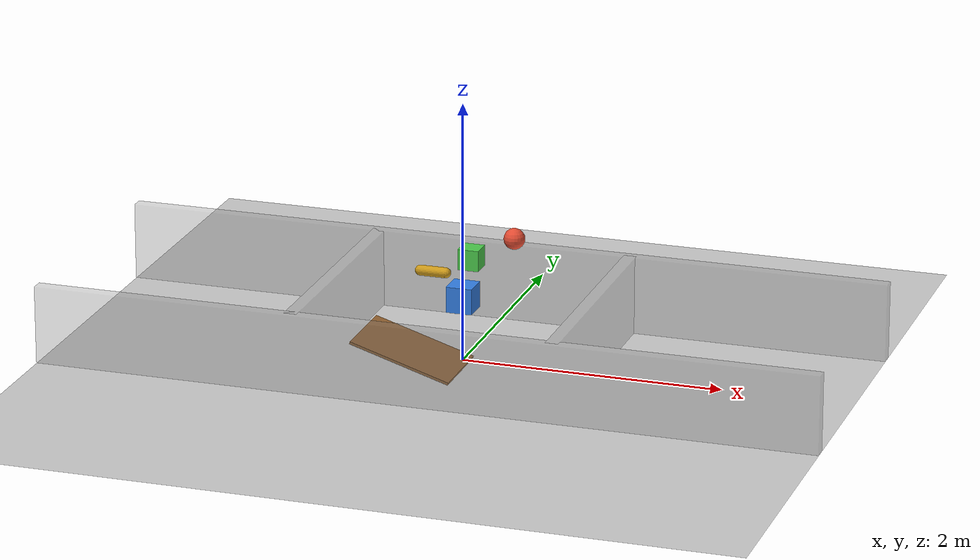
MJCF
<mujoco model="contact_demo">
  <compiler angle="radian"/>

  <option gravity="0 0 -9.81" timestep="0.002">
    <!-- Contact solver parameters -->
    <flag warmstart="enable"/>
  </option>

  <default>
    <geom contype="1" conaffinity="1" friction="0.8 0.005 0.001"
          solref="0.02 1" solimp="0.9 0.95 0.001"/>
  </default>

  <asset>
    <!-- Materials define visual appearance -->
    <material name="floor_mat" rgba="0.8 0.8 0.8 1" reflectance="0.3"/>
    <material name="box_mat" rgba="0.2 0.5 0.9 1"/>
    <material name="ball_mat" rgba="0.9 0.3 0.2 1"/>
    <material name="wall_mat" rgba="0.5 0.5 0.5 0.3"/>
  </asset>

  <visual>
    <headlight ambient="0.3 0.3 0.3"/>
    <rgba haze="0.15 0.25 0.35 1"/>
  </visual>

  <worldbody>
    <light pos="0 -2 3" dir="0 0.4 -1" diffuse="1 1 1" castshadow="true"/>
    <light pos="2 2 3" dir="-0.3 -0.3 -1" diffuse="0.5 0.5 0.5"/>

    <!-- Ground plane -->
    <geom type="plane" size="3 3 0.1" material="floor_mat"/>

    <!-- Walls (for containment) -->
    <geom type="box" size="3 0.05 0.3" pos="0 -1 0.3" material="wall_mat"/>
    <geom type="box" size="3 0.05 0.3" pos="0 1 0.3" material="wall_mat"/>
    <geom type="box" size="0.05 1 0.3" pos="-1 0 0.3" material="wall_mat"/>
    <geom type="box" size="0.05 1 0.3" pos="1 0 0.3" material="wall_mat"/>

    <!-- Box 1: free-floating body (6 DOF) -->
    <body name="box1" pos="0 0 0.5">
      <!-- Free joint: gives body full 6 DOF (3 translation + 3 rotation) -->
      <freejoint name="box1_free"/>
      <geom type="box" size="0.1 0.1 0.1" material="box_mat" mass="1.0"/>
    </body>

    <!-- Box 2: stacked above -->
    <body name="box2" pos="0.05 0.05 0.8">
      <freejoint name="box2_free"/>
      <geom type="box" size="0.08 0.08 0.08" rgba="0.3 0.8 0.3 1" mass="0.5"/>
    </body>

    <!-- Ball -->
    <body name="ball" pos="0.4 0 1.0">
      <freejoint name="ball_free"/>
      <geom type="sphere" size="0.08" material="ball_mat" mass="0.3"/>
    </body>

    <!-- Capsule (cylinder with rounded ends) -->
    <body name="capsule" pos="-0.3 0.2 0.6">
      <freejoint name="capsule_free"/>
      <geom type="capsule" size="0.04" fromto="-0.1 0 0 0.1 0 0"
            rgba="0.8 0.6 0.1 1" mass="0.4"/>
    </body>

    <!-- A ramp to show rolling/sliding -->
    <geom type="box" size="0.4 0.3 0.01" pos="-0.3 -0.3 0.15"
          euler="0 0.3 0" rgba="0.6 0.4 0.2 1"/>
  </worldbody>
</mujoco>
